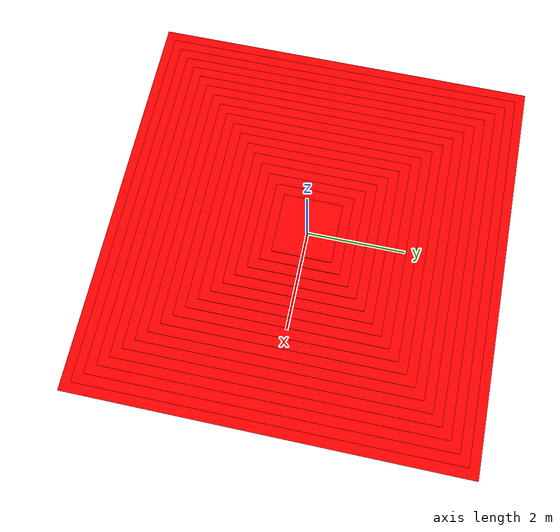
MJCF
<mujoco model="random_box_terrain">
    <compiler angle="degree" coordinate="local"/>
    <option timestep="0.01" gravity="0 0 -9.81" integrator="RK4"/>

    <asset>
        <texture type="2d" name="Plastic006_color"      file="../textures/Plastic006_2K-PNG/Plastic006_2K-PNG_Color.png"/>
        <texture type="2d" name="Plastic006_roughness"  file="../textures/Plastic006_2K-PNG/Plastic006_2K-PNG_Roughness.png"/>
        <texture type="2d" name="Plastic006_normal"     file="../textures/Plastic006_2K-PNG/Plastic006_2K-PNG_NormalDX.png"/>

        <material name="pbr_plastic_black" metallic ="0.05" roughness="1.0" rgba="1 0 0 1.0">
        <rgb        texture="Plastic006_color"/>
        <normal     texture="Plastic006_normal"/>
        <roughness  texture="Plastic006_roughness"/>
        </material>

        <texture type="2d" name="Plastic013A_color"      file="../textures/Plastic013A_2K-PNG/Plastic013A_2K-PNG_Color.png"/>
        <texture type="2d" name="Plastic013A_roughness"  file="../textures/Plastic013A_2K-PNG/Plastic013A_2K-PNG_Roughness.png"/>
        <texture type="2d" name="Plastic013A_normal"     file="../textures/Plastic013A_2K-PNG/Plastic013A_2K-PNG_NormalDX.png"/>

        <material name="pbr_plastic_white" metallic ="0.05" roughness="1.0" rgba="1 0 0 1.0">
        <rgb        texture="Plastic013A_color"/>
        <normal     texture="Plastic013A_normal"/>
        <roughness  texture="Plastic013A_roughness"/>
        </material>

        <texture type="2d" name="Plastic010_color"      file="../textures/Plastic010_2K-PNG/Plastic010_2K-PNG_Color.png"/>
        <texture type="2d" name="Plastic010_roughness"  file="../textures/Plastic010_2K-PNG/Plastic010_2K-PNG_Roughness.png"/>
        <texture type="2d" name="Plastic010_normal"     file="../textures/Plastic010_2K-PNG/Plastic010_2K-PNG_NormalDX.png"/>

        <material name="pbr_plastic_gray" metallic ="0.05" roughness="1.0" rgba="1 0 0 1.0">
        <rgb        texture="Plastic010_color"/>
        <normal     texture="Plastic010_normal"/>
        <roughness  texture="Plastic010_roughness"/>
        </material>
    </asset>
    <worldbody>
        <body name="terrain" pos="0.0 0.0 0.0">
            <geom type="box" pos="0.0 0.0 0.0" size="4.0 4.0 0.02"  material="pbr_plastic_gray"/>
            <geom type="box" pos="0.0 0.0 0.0" size="3.8 3.8 0.04"  material="pbr_plastic_white"/>
            <geom type="box" pos="0.0 0.0 0.0" size="3.6 3.6 0.06"  material="pbr_plastic_gray"/>
            <geom type="box" pos="0.0 0.0 0.0" size="3.4 3.4 0.08"  material="pbr_plastic_white"/>
            <geom type="box" pos="0.0 0.0 0.0" size="3.2 3.2 0.10"  material="pbr_plastic_gray"/>
            <geom type="box" pos="0.0 0.0 0.0" size="3.0 3.0 0.12"  material="pbr_plastic_white"/>
            <geom type="box" pos="0.0 0.0 0.0" size="2.8 2.8 0.14"  material="pbr_plastic_gray"/>
            <geom type="box" pos="0.0 0.0 0.0" size="2.6 2.6 0.16"  material="pbr_plastic_white"/>
            <geom type="box" pos="0.0 0.0 0.0" size="2.4 2.4 0.18"  material="pbr_plastic_gray"/>
            <geom type="box" pos="0.0 0.0 0.0" size="2.2 2.2 0.20"  material="pbr_plastic_white"/>
            <geom type="box" pos="0.0 0.0 0.0" size="2.0 2.0 0.22"  material="pbr_plastic_gray"/>
            <geom type="box" pos="0.0 0.0 0.0" size="1.8 1.8 0.24"  material="pbr_plastic_white"/>
            <geom type="box" pos="0.0 0.0 0.0" size="1.6 1.6 0.26"  material="pbr_plastic_gray"/>
            <geom type="box" pos="0.0 0.0 0.0" size="1.4 1.4 0.28"  material="pbr_plastic_white"/>
            <geom type="box" pos="0.0 0.0 0.0" size="1.2 1.2 0.30"  material="pbr_plastic_gray"/>
            <geom type="box" pos="0.0 0.0 0.0" size="1.0 1.0 0.32"  material="pbr_plastic_white"/>
            <geom type="box" pos="0.0 0.0 0.0" size="0.8 0.8 0.34"  material="pbr_plastic_gray"/>
            <geom type="box" pos="0.0 0.0 0.0" size="0.6 0.6 0.36"  material="pbr_plastic_white"/>
        </body>
    </worldbody>

    <actuator>
        <!-- 在这里你可以定义一些控制器 -->
    </actuator>

</mujoco>
